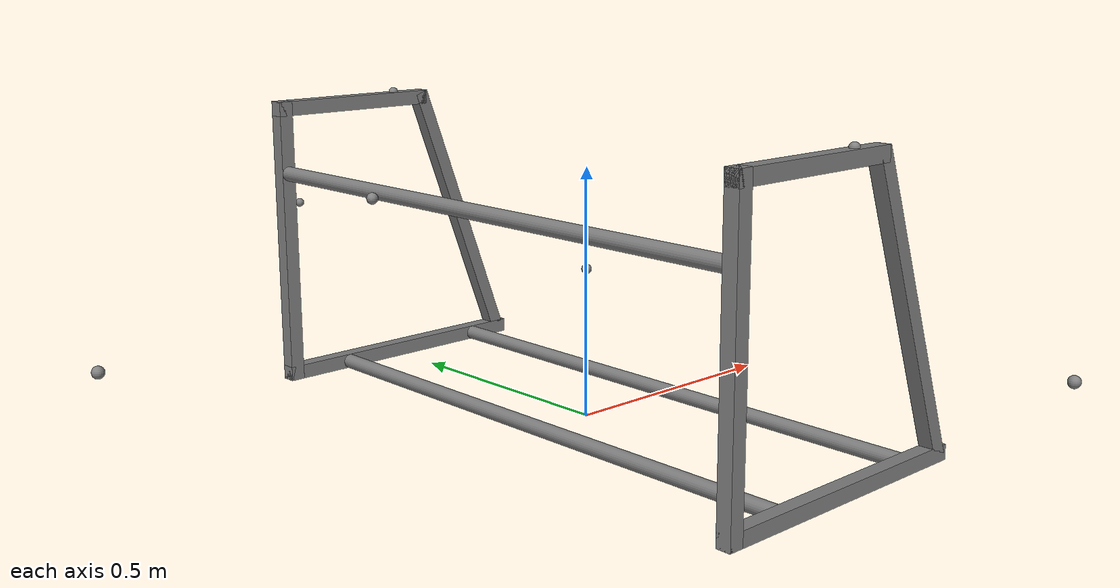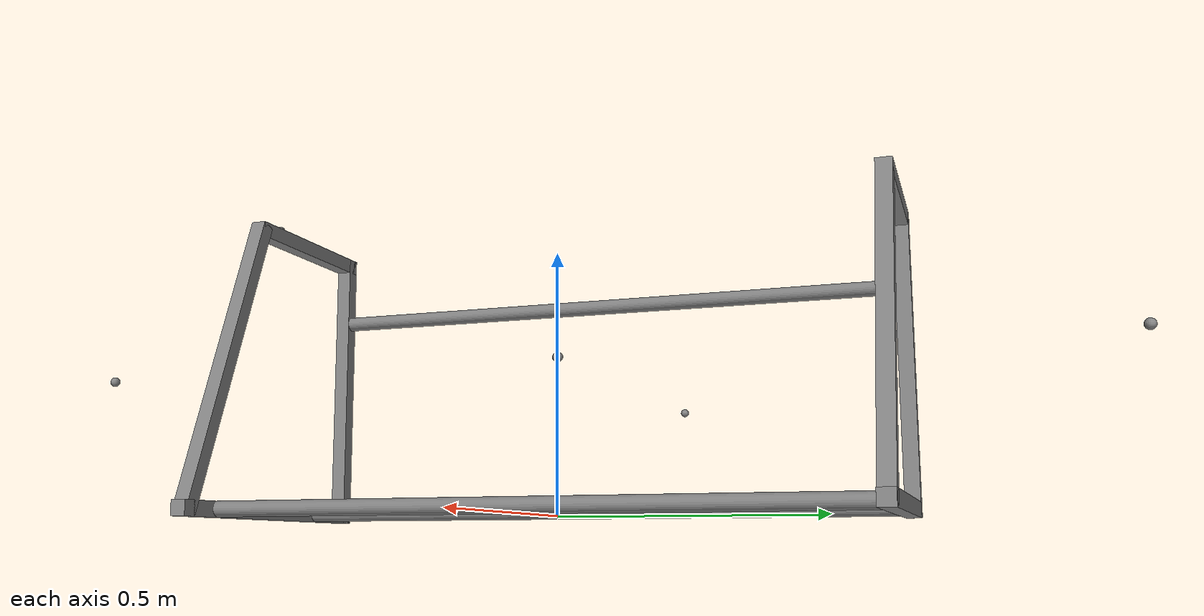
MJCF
<!-- Copyright (c) 2025 Boston Dynamics AI Institute LLC. All rights reserved. -->
<mujoco model="tire_rack">
  <include file="tire_rack_defs.xml" />
  <worldbody>
    <body name="tire_rack" pos="0 0 0.3">
      <joint name="tire_rack_joint" type="free"/>
      <!-- Calculated as a hollow box with wall thickness of 0.01 m. -->
      <inertial pos="0 0 0" mass="6.8" diaginertia="2.8043 1.267 2.8043"/>

      <!-- Left geom -->
      <geom name="left_horizontal_link_1" type="box" size="0.3 0.015 0.015" pos="0 -0.6175 -0.285" priority="3" />
      <geom name="left_horizontal_link_2" type="box" size="0.19 0.015 0.015" pos="-0.11 -0.6175 0.285" priority="3"/>
      <geom name="left_vertical_link_1" type="box" size="0.015 0.015 0.3" pos="-0.285 -0.6175 0" priority="3"/>
      <geom name="left_vertical_link_2" type="box" size="0.015 0.015 0.314" pos="0.175 -0.6175 0" quat="0.9846394 0 -0.1746005 0" priority="3"/>

      <!-- Right geom -->
      <geom name="right_horizontal_link_1" type="box" size="0.3 0.015 0.015" pos="0 0.6175 -0.285" priority="3"/>
      <geom name="right_horizontal_link_2" type="box" size="0.19 0.015 0.015" pos="-0.11 0.6175 0.285" priority="3"/>
      <geom name="right_vertical_link_1" type="box" size="0.015 0.015 0.3" pos="-0.285 0.6175 0" priority="3"/>
      <geom name="right_vertical_link_2" type="box" size="0.015 0.015 0.314" pos="0.175 0.6175 0" quat="0.9846394 0 -0.1746005 0" priority="3"/>

      <!-- Support cylinders geom -->
      <geom name="cylinder_1" type="cylinder" size="0.015 0.6025" pos="-0.15 0 -0.285" quat="0.7073883 0.7068252 0 0" priority="3"/>
      <geom name="cylinder_2" type="cylinder" size="0.015 0.6025" pos="0.2 0 -0.285" quat="0.7073883 0.7068252 0 0" priority="3"/>
      <geom name="cylinder_3" type="cylinder" size="0.015 0.6025" pos="-0.285 0 0.15" quat="0.7073883 0.7068252 0 0" priority="3"/>

      <!-- Sites for sensors and tracking -->
      <site name="site_object" pos="0 0 0" size="0.01"/>
      <site name="trace_tire_rack" pos="0 0 0" size="0.01"/>

      <!-- Grasp sites on left and right vertical frames at mid-height -->
      <!-- Mid-height ~0 (center of mass), left/right at y = ±0.6175 -->
      <site name="site_grasp_left" pos="0 -0.6175 0.3" size="0.01"/>
      <site name="site_grasp_left_mid" pos="-0.5 0 0.2" size="0.01"/>
      <site name="site_grasp_right" pos="0 0.6175 0.3" size="0.01"/>

      <!-- Trace sites for grasp visualization -->
      <site name="trace_grasp_left" pos="0 -0.6175 0.3" size="0.01"/>
      <site name="trace_grasp_left_mid" pos="-0.5 0 0.2" size="0.01"/>
      <site name="trace_grasp_right" pos="0 0.6175 0.3" size="0.01"/>

      <!-- Approach sites for torso positioning (extended beyond rack edges) -->
      <!-- Extend 0.4m beyond left/right edges for approach -->
      <site name="site_approach_left" pos="0 -1.0175 0" size="0.01"/>   <!-- 0.4m beyond left edge -->
      <site name="site_approach_mid" pos="-1.0 0 0" size="0.01"/>
      <site name="site_approach_right" pos="0 1.0175 0" size="0.01"/>  <!-- 0.4m beyond right edge -->
    </body>
  </worldbody>
</mujoco>

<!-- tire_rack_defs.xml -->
<mujoco>
  <!-- Copyright (c) 2025 Boston Dynamics AI Institute LLC. All rights reserved. -->
  <default>
    <default class="tire_rack_visual">
      <geom type="mesh" contype="0" conaffinity="0" group="2"/>
    </default>
    <default class="tire_rack_collision">
      <geom friction="0.42 0.42" priority="6"/>
    </default>
  </default>

  <asset>
    <material name="tire_rack_metal" rgba="0.5 0.5 0.5 1" metallic="0.5" roughness="0.5"/>
  </asset>
</mujoco>
